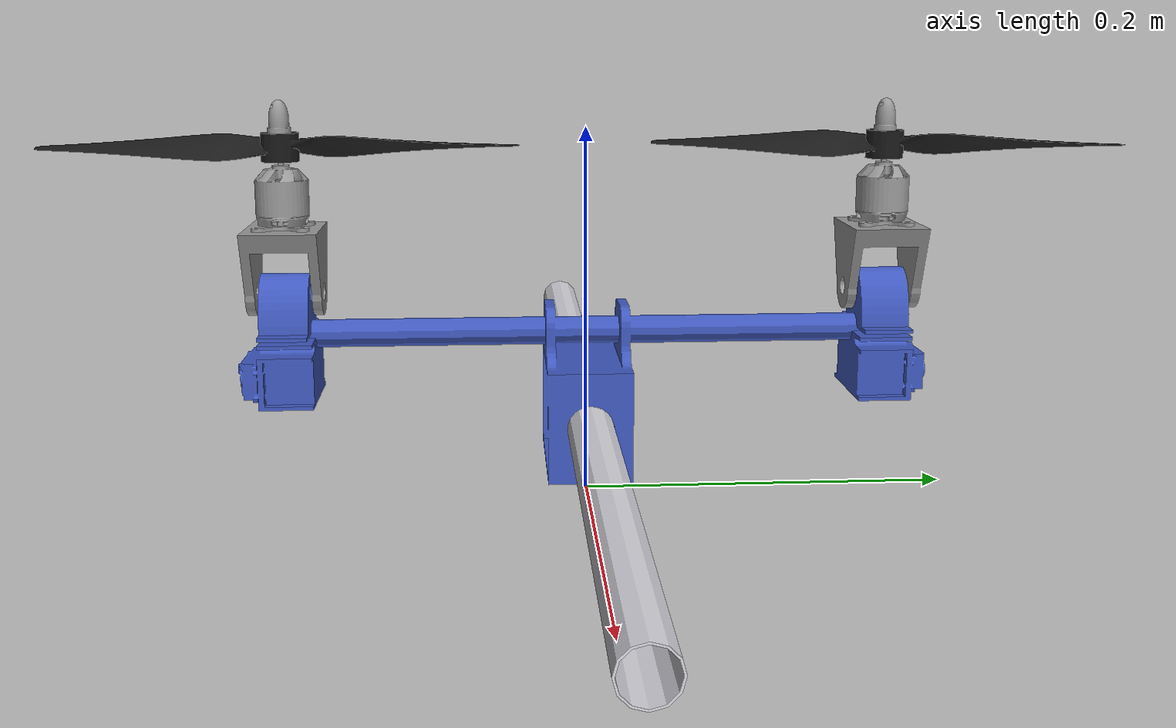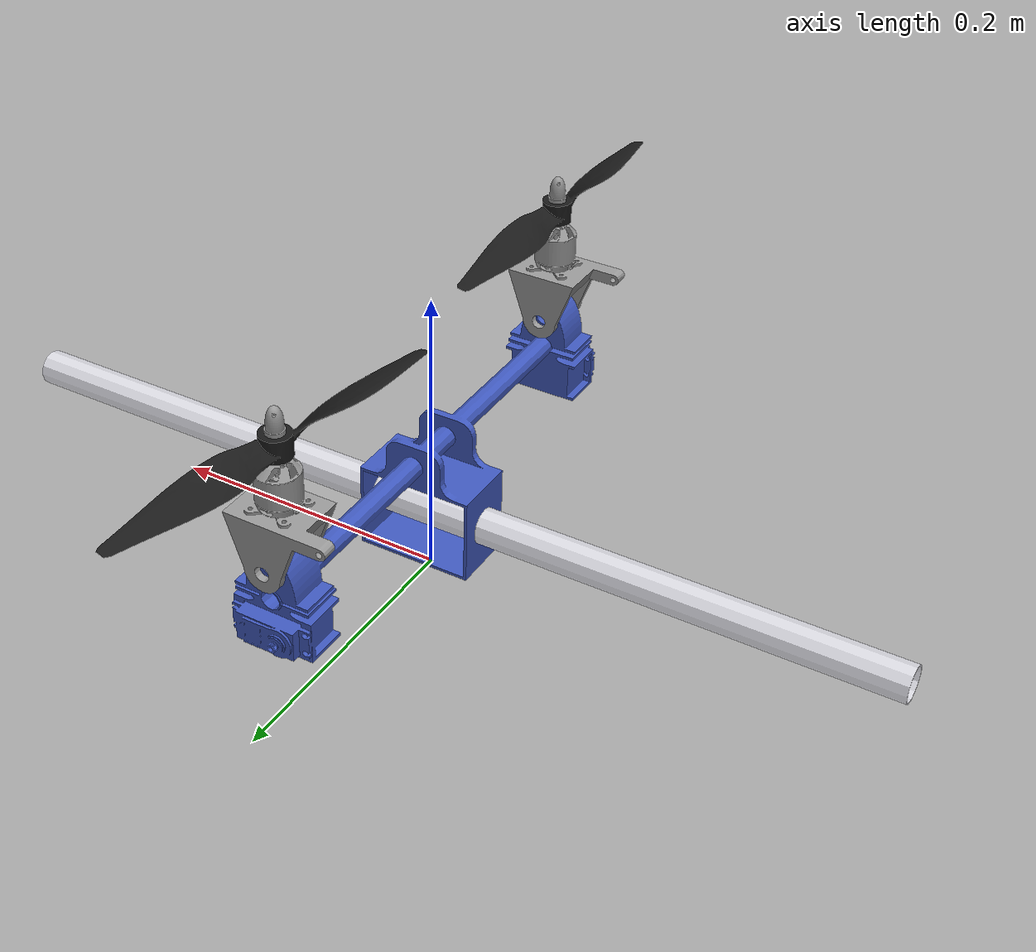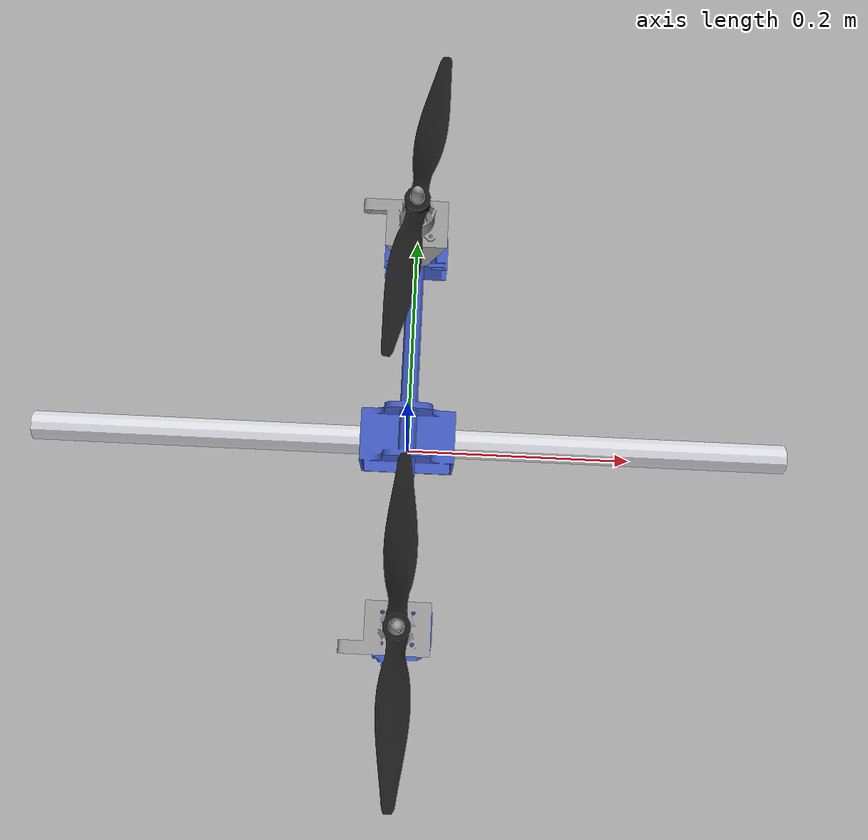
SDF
<sdf version="1.9">
 <world name="bicopter_world">
  <include><uri>model://bi_copter</uri><name>bi_copter</name><pose>0 0 0.045 0 0 0</pose></include>
 </world>
</sdf>
